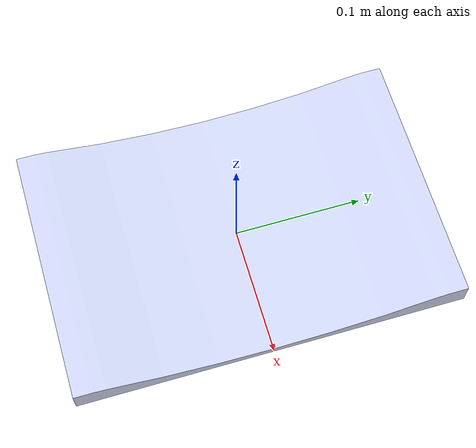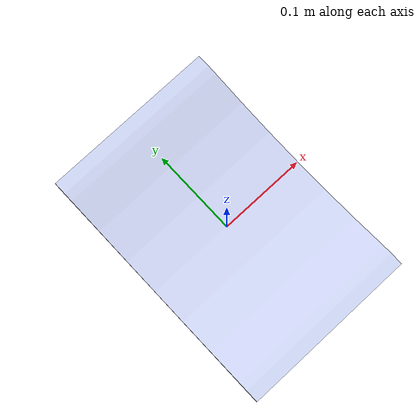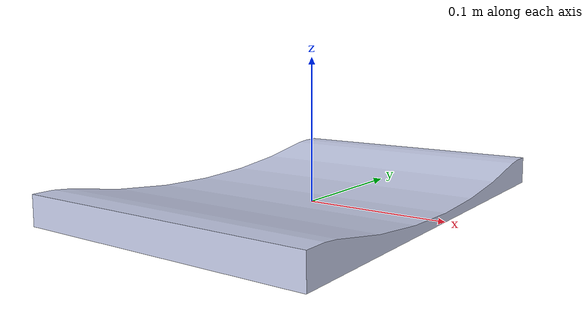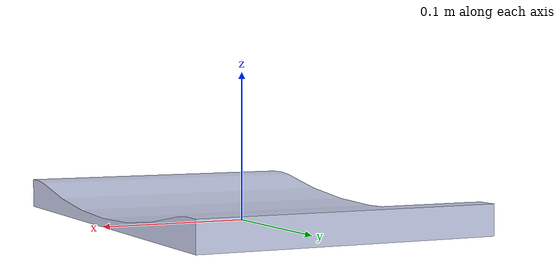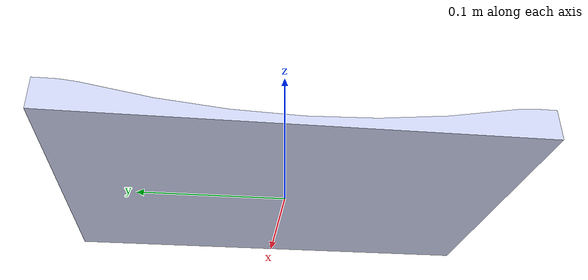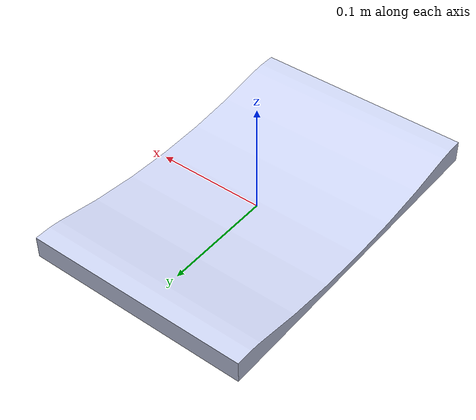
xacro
<?xml version='1.0'?>

<robot name="armc" xmlns:xacro="http://www.ros.org/wiki/xacro">

  <!-- simple joints macros configure the joint driver and param-->
  <link name="world"/>
  <joint name="fixed" type="fixed">
    <parent link="world"/>
    <child link="base_link"/>
  </joint>
  <link
    name="base_link">
   <inertial>
      <origin
        xyz="-5.847E-17 3.8124E-17 0.0069755"
        rpy="0 0 0" />
      <mass
        value="0.70432" />
      <inertia
        ixx="0.007332"
        ixy="1.4008E-18"
        ixz="7.9025E-19"
        iyy="0.0023652"
        iyz="9.4998E-18"
        izz="0.0096623" />
    </inertial>
    <visual>
      <origin
        xyz="0 0 0"
        rpy="0 0 0" />
      <geometry>
        <mesh
          filename="//armc_description/meshes/my_Link.STL" />
      </geometry>
      <material
        name="">
        <color
          rgba="0.79216 0.81961 0.93333 1" />
      </material>
    </visual>
    <collision>
      <origin
        xyz="0 0 0"
        rpy="0 0 0" />
      <geometry>
        <mesh
          filename="//armc_description/meshes/my_Link.STL" />
      </geometry>
    </collision>
  </link>
</robot>
